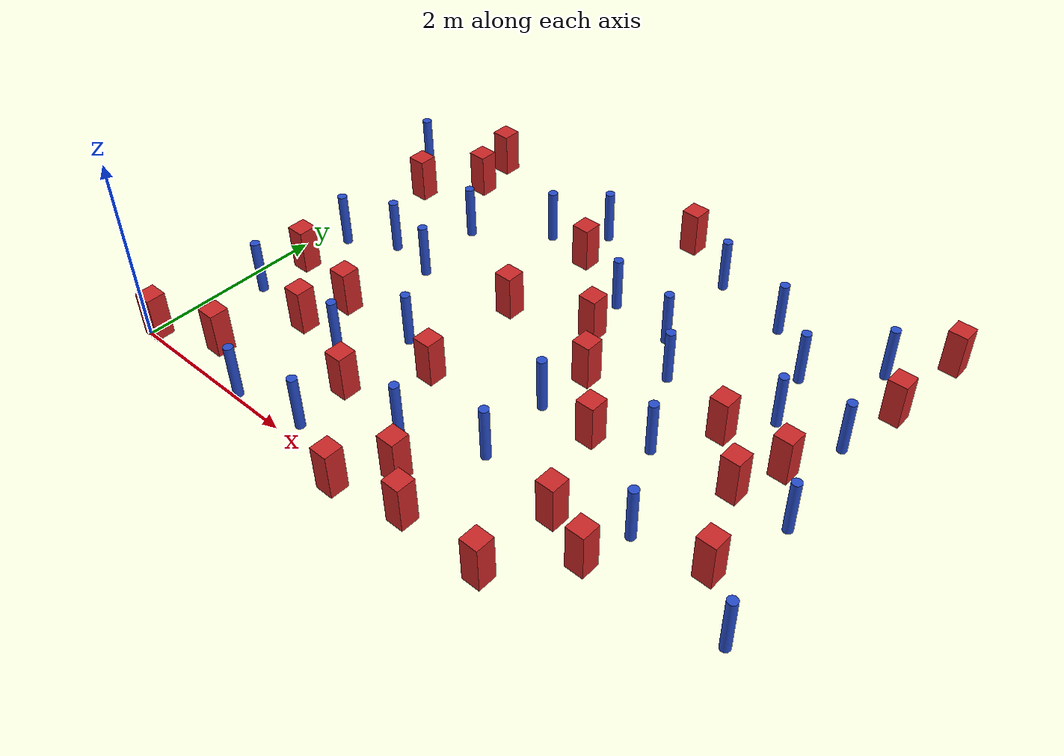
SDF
<sdf version="1.6">
 <model name="dense_6">
  <model name="pole_obstacle1">
   <static>true</static>
   <pose>3.22779918112 3.45898310527 7.38925637345e-09 -8.47170692798e-08 1.24976764939e-08 -1.74513093025e-07</pose>
   <link name="link">
    <pose>0 0 0.3 0 -0 0</pose>
    <inertial>
     <mass>1</mass>
     <inertia><ixx>0.145833</ixx><ixy>0</ixy><ixz>0</ixz><iyy>0.145833</iyy><iyz>0</iyz><izz>0.125</izz></inertia>
    </inertial>
    <collision name="collision">
     <geometry><cylinder><radius>0.05</radius><length>.6</length></cylinder></geometry>
    </collision>
    <visual name="visual">
     <geometry><cylinder><radius>0.05</radius><length>.6</length></cylinder></geometry>
     <material>
      <script><name>Gazebo/Blue</name><uri>file://media/materials/scripts/gazebo.material</uri></script>
     </material>
    </visual>
   </link>
  </model>
  <model name="pole_obstacle6">
   <static>true</static>
   <pose>5.24686441359 3.76029672284 7.38925637345e-09 -8.47170692798e-08 1.24976764937e-08 -1.74513093023e-07</pose>
   <link name="link">
    <pose>0 0 0.3 0 -0 0</pose>
    <inertial>
     <mass>1</mass>
     <inertia><ixx>0.145833</ixx><ixy>0</ixy><ixz>0</ixz><iyy>0.145833</iyy><iyz>0</iyz><izz>0.125</izz></inertia>
    </inertial>
    <collision name="collision">
     <geometry><cylinder><radius>0.05</radius><length>.6</length></cylinder></geometry>
    </collision>
    <visual name="visual">
     <geometry><cylinder><radius>0.05</radius><length>.6</length></cylinder></geometry>
     <material>
      <script><name>Gazebo/Blue</name><uri>file://media/materials/scripts/gazebo.material</uri></script>
     </material>
    </visual>
   </link>
  </model>
  <model name="pole_obstacle14">
   <static>true</static>
   <pose>1.94766628035 3.90778660255 7.38925637345e-09 -8.47170692799e-08 1.24976765053e-08 -1.74513093017e-07</pose>
   <link name="link">
    <pose>0 0 0.3 0 -0 0</pose>
    <inertial>
     <mass>1</mass>
     <inertia><ixx>0.145833</ixx><ixy>0</ixy><ixz>0</ixz><iyy>0.145833</iyy><iyz>0</iyz><izz>0.125</izz></inertia>
    </inertial>
    <collision name="collision">
     <geometry><cylinder><radius>0.05</radius><length>.6</length></cylinder></geometry>
    </collision>
    <visual name="visual">
     <geometry><cylinder><radius>0.05</radius><length>.6</length></cylinder></geometry>
     <material>
      <script><name>Gazebo/Blue</name><uri>file://media/materials/scripts/gazebo.material</uri></script>
     </material>
    </visual>
   </link>
  </model>
  <model name="square_post_obstacle30">
   <static>true</static>
   <pose>5.13288017218 0.674521279068 1.91545236811e-07 -7.35059704564e-06 1.12565212e-07 2.39332434364e-05</pose>
   <link name="link">
    <pose>0 0 0.25 0 -0 0</pose>
    <inertial>
     <mass>100</mass>
     <inertia>
      <ixx>0.166667</ixx>
      <ixy>0</ixy>
      <ixz>0</ixz>
      <iyy>0.166667</iyy>
      <iyz>0</iyz>
      <izz>0.166667</izz>
     </inertia>
    </inertial>
    <collision name="collision"><geometry><box><size>.2 .2 .5</size></box></geometry></collision>
    <visual name="visual">
     <geometry><box><size>.2 .2 .5</size></box></geometry>
     <material>
      <script><name>Gazebo/Red</name><uri>file://media/materials/scripts/gazebo.material</uri></script>
     </material>
    </visual>
   </link>
  </model>
  <model name="pole_obstacle37">
   <static>true</static>
   <pose>5.84280054387 4.3593617072 7.38925637345e-09 -8.47170692796e-08 1.24976764786e-08 -1.74513093032e-07</pose>
   <link name="link">
    <pose>0 0 0.3 0 -0 0</pose>
    <inertial>
     <mass>1</mass>
     <inertia><ixx>0.145833</ixx><ixy>0</ixy><ixz>0</ixz><iyy>0.145833</iyy><iyz>0</iyz><izz>0.125</izz></inertia>
    </inertial>
    <collision name="collision">
     <geometry><cylinder><radius>0.05</radius><length>.6</length></cylinder></geometry>
    </collision>
    <visual name="visual">
     <geometry><cylinder><radius>0.05</radius><length>.6</length></cylinder></geometry>
     <material>
      <script><name>Gazebo/Blue</name><uri>file://media/materials/scripts/gazebo.material</uri></script>
     </material>
    </visual>
   </link>
  </model>
  <model name="square_post_obstacle41">
   <static>true</static>
   <pose>0.294179833933 1.78256472612 1.91545236811e-07 -7.35059704564e-06 1.12565212e-07 2.39332434364e-05</pose>
   <link name="link">
    <pose>0 0 0.25 0 -0 0</pose>
    <inertial>
     <mass>100</mass>
     <inertia>
      <ixx>0.166667</ixx>
      <ixy>0</ixy>
      <ixz>0</ixz>
      <iyy>0.166667</iyy>
      <iyz>0</iyz>
      <izz>0.166667</izz>
     </inertia>
    </inertial>
    <collision name="collision"><geometry><box><size>.2 .2 .5</size></box></geometry></collision>
    <visual name="visual">
     <geometry><box><size>.2 .2 .5</size></box></geometry>
     <material>
      <script><name>Gazebo/Red</name><uri>file://media/materials/scripts/gazebo.material</uri></script>
     </material>
    </visual>
   </link>
  </model>
  <model name="square_post_obstacle42">
   <static>true</static>
   <pose>3.70733429573 2.41052173213 1.91545236811e-07 -7.35059704564e-06 1.12565212e-07 2.39332434364e-05</pose>
   <link name="link">
    <pose>0 0 0.25 0 -0 0</pose>
    <inertial>
     <mass>100</mass>
     <inertia>
      <ixx>0.166667</ixx>
      <ixy>0</ixy>
      <ixz>0</ixz>
      <iyy>0.166667</iyy>
      <iyz>0</iyz>
      <izz>0.166667</izz>
     </inertia>
    </inertial>
    <collision name="collision"><geometry><box><size>.2 .2 .5</size></box></geometry></collision>
    <visual name="visual">
     <geometry><box><size>.2 .2 .5</size></box></geometry>
     <material>
      <script><name>Gazebo/Red</name><uri>file://media/materials/scripts/gazebo.material</uri></script>
     </material>
    </visual>
   </link>
  </model>
  <model name="pole_obstacle52">
   <static>true</static>
   <pose>3.86616990221 4.44570101452 7.38925637345e-09 -8.47170692798e-08 1.24976765033e-08 -1.74513093019e-07</pose>
   <link name="link">
    <pose>0 0 0.3 0 -0 0</pose>
    <inertial>
     <mass>1</mass>
     <inertia><ixx>0.145833</ixx><ixy>0</ixy><ixz>0</ixz><iyy>0.145833</iyy><iyz>0</iyz><izz>0.125</izz></inertia>
    </inertial>
    <collision name="collision">
     <geometry><cylinder><radius>0.05</radius><length>.6</length></cylinder></geometry>
    </collision>
    <visual name="visual">
     <geometry><cylinder><radius>0.05</radius><length>.6</length></cylinder></geometry>
     <material>
      <script><name>Gazebo/Blue</name><uri>file://media/materials/scripts/gazebo.material</uri></script>
     </material>
    </visual>
   </link>
  </model>
  <model name="pole_obstacle55">
   <static>true</static>
   <pose>0.297352679253 2.3528883768 7.38925637345e-09 -8.471706928e-08 1.24976765078e-08 -1.74513093017e-07</pose>
   <link name="link">
    <pose>0 0 0.3 0 -0 0</pose>
    <inertial>
     <mass>1</mass>
     <inertia><ixx>0.145833</ixx><ixy>0</ixy><ixz>0</ixz><iyy>0.145833</iyy><iyz>0</iyz><izz>0.125</izz></inertia>
    </inertial>
    <collision name="collision">
     <geometry><cylinder><radius>0.05</radius><length>.6</length></cylinder></geometry>
    </collision>
    <visual name="visual">
     <geometry><cylinder><radius>0.05</radius><length>.6</length></cylinder></geometry>
     <material>
      <script><name>Gazebo/Blue</name><uri>file://media/materials/scripts/gazebo.material</uri></script>
     </material>
    </visual>
   </link>
  </model>
  <model name="pole_obstacle63">
   <static>true</static>
   <pose>4.76035839436 2.07022243836 7.38925637345e-09 -8.47170692798e-08 1.24976764937e-08 -1.74513093023e-07</pose>
   <link name="link">
    <pose>0 0 0.3 0 -0 0</pose>
    <inertial>
     <mass>1</mass>
     <inertia><ixx>0.145833</ixx><ixy>0</ixy><ixz>0</ixz><iyy>0.145833</iyy><iyz>0</iyz><izz>0.125</izz></inertia>
    </inertial>
    <collision name="collision">
     <geometry><cylinder><radius>0.05</radius><length>.6</length></cylinder></geometry>
    </collision>
    <visual name="visual">
     <geometry><cylinder><radius>0.05</radius><length>.6</length></cylinder></geometry>
     <material>
      <script><name>Gazebo/Blue</name><uri>file://media/materials/scripts/gazebo.material</uri></script>
     </material>
    </visual>
   </link>
  </model>
  <model name="square_post_obstacle66">
   <static>true</static>
   <pose>1.16872407727 1.60637170319 1.91545236811e-07 -7.35059704564e-06 1.12565212e-07 2.39332434364e-05</pose>
   <link name="link">
    <pose>0 0 0.25 0 -0 0</pose>
    <inertial>
     <mass>100</mass>
     <inertia>
      <ixx>0.166667</ixx>
      <ixy>0</ixy>
      <ixz>0</ixz>
      <iyy>0.166667</iyy>
      <iyz>0</iyz>
      <izz>0.166667</izz>
     </inertia>
    </inertial>
    <collision name="collision"><geometry><box><size>.2 .2 .5</size></box></geometry></collision>
    <visual name="visual">
     <geometry><box><size>.2 .2 .5</size></box></geometry>
     <material>
      <script><name>Gazebo/Red</name><uri>file://media/materials/scripts/gazebo.material</uri></script>
     </material>
    </visual>
   </link>
  </model>
  <model name="pole_obstacle68">
   <static>true</static>
   <pose>2.41578329187 4.30963766332 7.38925637345e-09 -8.47170692798e-08 1.24976765033e-08 -1.74513093019e-07</pose>
   <link name="link">
    <pose>0 0 0.3 0 -0 0</pose>
    <inertial>
     <mass>1</mass>
     <inertia><ixx>0.145833</ixx><ixy>0</ixy><ixz>0</ixz><iyy>0.145833</iyy><iyz>0</iyz><izz>0.125</izz></inertia>
    </inertial>
    <collision name="collision">
     <geometry><cylinder><radius>0.05</radius><length>.6</length></cylinder></geometry>
    </collision>
    <visual name="visual">
     <geometry><cylinder><radius>0.05</radius><length>.6</length></cylinder></geometry>
     <material>
      <script><name>Gazebo/Blue</name><uri>file://media/materials/scripts/gazebo.material</uri></script>
     </material>
    </visual>
   </link>
  </model>
  <model name="square_post_obstacle75">
   <static>true</static>
   <pose>4.25424207896 1.82605460015 1.91545236811e-07 -7.35059704564e-06 1.12565212e-07 2.39332434364e-05</pose>
   <link name="link">
    <pose>0 0 0.25 0 -0 0</pose>
    <inertial>
     <mass>100</mass>
     <inertia>
      <ixx>0.166667</ixx>
      <ixy>0</ixy>
      <ixz>0</ixz>
      <iyy>0.166667</iyy>
      <iyz>0</iyz>
      <izz>0.166667</izz>
     </inertia>
    </inertial>
    <collision name="collision"><geometry><box><size>.2 .2 .5</size></box></geometry></collision>
    <visual name="visual">
     <geometry><box><size>.2 .2 .5</size></box></geometry>
     <material>
      <script><name>Gazebo/Red</name><uri>file://media/materials/scripts/gazebo.material</uri></script>
     </material>
    </visual>
   </link>
  </model>
  <model name="pole_obstacle73">
   <static>true</static>
   <pose>6.19446029751 2.12766933946 7.38925637345e-09 -8.47170692798e-08 1.24976764937e-08 -1.74513093023e-07</pose>
   <link name="link">
    <pose>0 0 0.3 0 -0 0</pose>
    <inertial>
     <mass>1</mass>
     <inertia><ixx>0.145833</ixx><ixy>0</ixy><ixz>0</ixz><iyy>0.145833</iyy><iyz>0</iyz><izz>0.125</izz></inertia>
    </inertial>
    <collision name="collision">
     <geometry><cylinder><radius>0.05</radius><length>.6</length></cylinder></geometry>
    </collision>
    <visual name="visual">
     <geometry><cylinder><radius>0.05</radius><length>.6</length></cylinder></geometry>
     <material>
      <script><name>Gazebo/Blue</name><uri>file://media/materials/scripts/gazebo.material</uri></script>
     </material>
    </visual>
   </link>
  </model>
  <model name="pole_obstacle77">
   <static>true</static>
   <pose>-0.147935530165 4.04131726886 7.38925637345e-09 -8.47170692798e-08 1.24976764967e-08 -1.74513093023e-07</pose>
   <link name="link">
    <pose>0 0 0.3 0 -0 0</pose>
    <inertial>
     <mass>1</mass>
     <inertia><ixx>0.145833</ixx><ixy>0</ixy><ixz>0</ixz><iyy>0.145833</iyy><iyz>0</iyz><izz>0.125</izz></inertia>
    </inertial>
    <collision name="collision">
     <geometry><cylinder><radius>0.05</radius><length>.6</length></cylinder></geometry>
    </collision>
    <visual name="visual">
     <geometry><cylinder><radius>0.05</radius><length>.6</length></cylinder></geometry>
     <material>
      <script><name>Gazebo/Blue</name><uri>file://media/materials/scripts/gazebo.material</uri></script>
     </material>
    </visual>
   </link>
  </model>
  <model name="square_post_obstacle77">
   <static>true</static>
   <pose>5.11859508152 2.65492560635 1.91545236811e-07 -7.35059704564e-06 1.12565212e-07 2.39332434364e-05</pose>
   <link name="link">
    <pose>0 0 0.25 0 -0 0</pose>
    <inertial>
     <mass>100</mass>
     <inertia>
      <ixx>0.166667</ixx>
      <ixy>0</ixy>
      <ixz>0</ixz>
      <iyy>0.166667</iyy>
      <iyz>0</iyz>
      <izz>0.166667</izz>
     </inertia>
    </inertial>
    <collision name="collision"><geometry><box><size>.2 .2 .5</size></box></geometry></collision>
    <visual name="visual">
     <geometry><box><size>.2 .2 .5</size></box></geometry>
     <material>
      <script><name>Gazebo/Red</name><uri>file://media/materials/scripts/gazebo.material</uri></script>
     </material>
    </visual>
   </link>
  </model>
  <model name="pole_obstacle80">
   <static>true</static>
   <pose>3.93960398755 3.36603298096 7.38925637345e-09 -8.47170692798e-08 1.24976764939e-08 -1.74513093025e-07</pose>
   <link name="link">
    <pose>0 0 0.3 0 -0 0</pose>
    <inertial>
     <mass>1</mass>
     <inertia><ixx>0.145833</ixx><ixy>0</ixy><ixz>0</ixz><iyy>0.145833</iyy><iyz>0</iyz><izz>0.125</izz></inertia>
    </inertial>
    <collision name="collision">
     <geometry><cylinder><radius>0.05</radius><length>.6</length></cylinder></geometry>
    </collision>
    <visual name="visual">
     <geometry><cylinder><radius>0.05</radius><length>.6</length></cylinder></geometry>
     <material>
      <script><name>Gazebo/Blue</name><uri>file://media/materials/scripts/gazebo.material</uri></script>
     </material>
    </visual>
   </link>
  </model>
  <model name="pole_obstacle84">
   <static>true</static>
   <pose>5.24751490533 1.17985394361 7.38925637345e-09 -8.471706928e-08 1.24976765134e-08 -1.74513093015e-07</pose>
   <link name="link">
    <pose>0 0 0.3 0 -0 0</pose>
    <inertial>
     <mass>1</mass>
     <inertia><ixx>0.145833</ixx><ixy>0</ixy><ixz>0</ixz><iyy>0.145833</iyy><iyz>0</iyz><izz>0.125</izz></inertia>
    </inertial>
    <collision name="collision">
     <geometry><cylinder><radius>0.05</radius><length>.6</length></cylinder></geometry>
    </collision>
    <visual name="visual">
     <geometry><cylinder><radius>0.05</radius><length>.6</length></cylinder></geometry>
     <material>
      <script><name>Gazebo/Blue</name><uri>file://media/materials/scripts/gazebo.material</uri></script>
     </material>
    </visual>
   </link>
  </model>
  <model name="square_post_obstacle82">
   <static>true</static>
   <pose>3.66900997854 0.0325757577106 1.91545236811e-07 -7.35059704564e-06 1.12565212e-07 2.39332434364e-05</pose>
   <link name="link">
    <pose>0 0 0.25 0 -0 0</pose>
    <inertial>
     <mass>100</mass>
     <inertia>
      <ixx>0.166667</ixx>
      <ixy>0</ixy>
      <ixz>0</ixz>
      <iyy>0.166667</iyy>
      <iyz>0</iyz>
      <izz>0.166667</izz>
     </inertia>
    </inertial>
    <collision name="collision"><geometry><box><size>.2 .2 .5</size></box></geometry></collision>
    <visual name="visual">
     <geometry><box><size>.2 .2 .5</size></box></geometry>
     <material>
      <script><name>Gazebo/Red</name><uri>file://media/materials/scripts/gazebo.material</uri></script>
     </material>
    </visual>
   </link>
  </model>
  <model name="pole_obstacle90">
   <static>true</static>
   <pose>4.29182752671 2.92887068589 7.38925637345e-09 -8.47170692798e-08 1.24976764937e-08 -1.74513093023e-07</pose>
   <link name="link">
    <pose>0 0 0.3 0 -0 0</pose>
    <inertial>
     <mass>1</mass>
     <inertia><ixx>0.145833</ixx><ixy>0</ixy><ixz>0</ixz><iyy>0.145833</iyy><iyz>0</iyz><izz>0.125</izz></inertia>
    </inertial>
    <collision name="collision">
     <geometry><cylinder><radius>0.05</radius><length>.6</length></cylinder></geometry>
    </collision>
    <visual name="visual">
     <geometry><cylinder><radius>0.05</radius><length>.6</length></cylinder></geometry>
     <material>
      <script><name>Gazebo/Blue</name><uri>file://media/materials/scripts/gazebo.material</uri></script>
     </material>
    </visual>
   </link>
  </model>
  <model name="pole_obstacle96">
   <static>true</static>
   <pose>0.270935388706 1.20584516179 7.38925637345e-09 -8.47170692799e-08 1.24976765073e-08 -1.74513093015e-07</pose>
   <link name="link">
    <pose>0 0 0.3 0 -0 0</pose>
    <inertial>
     <mass>1</mass>
     <inertia><ixx>0.145833</ixx><ixy>0</ixy><ixz>0</ixz><iyy>0.145833</iyy><iyz>0</iyz><izz>0.125</izz></inertia>
    </inertial>
    <collision name="collision">
     <geometry><cylinder><radius>0.05</radius><length>.6</length></cylinder></geometry>
    </collision>
    <visual name="visual">
     <geometry><cylinder><radius>0.05</radius><length>.6</length></cylinder></geometry>
     <material>
      <script><name>Gazebo/Blue</name><uri>file://media/materials/scripts/gazebo.material</uri></script>
     </material>
    </visual>
   </link>
  </model>
  <model name="square_post_obstacle84">
   <static>true</static>
   <pose>5.80404412261 2.63800593922 1.91545236811e-07 -7.35059704564e-06 1.12565212e-07 2.39332434364e-05</pose>
   <link name="link">
    <pose>0 0 0.25 0 -0 0</pose>
    <inertial>
     <mass>100</mass>
     <inertia>
      <ixx>0.166667</ixx>
      <ixy>0</ixy>
      <ixz>0</ixz>
      <iyy>0.166667</iyy>
      <iyz>0</iyz>
      <izz>0.166667</izz>
     </inertia>
    </inertial>
    <collision name="collision"><geometry><box><size>.2 .2 .5</size></box></geometry></collision>
    <visual name="visual">
     <geometry><box><size>.2 .2 .5</size></box></geometry>
     <material>
      <script><name>Gazebo/Red</name><uri>file://media/materials/scripts/gazebo.material</uri></script>
     </material>
    </visual>
   </link>
  </model>
  <model name="pole_obstacle100">
   <static>true</static>
   <pose>3.6477077047 1.84033119703 7.38925637345e-09 -8.471706928e-08 1.24976765152e-08 -1.74513093012e-07</pose>
   <link name="link">
    <pose>0 0 0.3 0 -0 0</pose>
    <inertial>
     <mass>1</mass>
     <inertia><ixx>0.145833</ixx><ixy>0</ixy><ixz>0</ixz><iyy>0.145833</iyy><iyz>0</iyz><izz>0.125</izz></inertia>
    </inertial>
    <collision name="collision">
     <geometry><cylinder><radius>0.05</radius><length>.6</length></cylinder></geometry>
    </collision>
    <visual name="visual">
     <geometry><cylinder><radius>0.05</radius><length>.6</length></cylinder></geometry>
     <material>
      <script><name>Gazebo/Blue</name><uri>file://media/materials/scripts/gazebo.material</uri></script>
     </material>
    </visual>
   </link>
  </model>
  <model name="square_post_obstacle90">
   <static>true</static>
   <pose>4.58704493301 0.0254031396948 1.91545236811e-07 -7.35059704564e-06 1.12565212e-07 2.39332434364e-05</pose>
   <link name="link">
    <pose>0 0 0.25 0 -0 0</pose>
    <inertial>
     <mass>100</mass>
     <inertia>
      <ixx>0.166667</ixx>
      <ixy>0</ixy>
      <ixz>0</ixz>
      <iyy>0.166667</iyy>
      <iyz>0</iyz>
      <izz>0.166667</izz>
     </inertia>
    </inertial>
    <collision name="collision"><geometry><box><size>.2 .2 .5</size></box></geometry></collision>
    <visual name="visual">
     <geometry><box><size>.2 .2 .5</size></box></geometry>
     <material>
      <script><name>Gazebo/Red</name><uri>file://media/materials/scripts/gazebo.material</uri></script>
     </material>
    </visual>
   </link>
  </model>
  <model name="square_post_obstacle94">
   <static>true</static>
   <pose>0.703124214271 0.343905633906 1.91545236811e-07 -7.35059704564e-06 1.12565212e-07 2.39332434364e-05</pose>
   <link name="link">
    <pose>0 0 0.25 0 -0 0</pose>
    <inertial>
     <mass>100</mass>
     <inertia>
      <ixx>0.166667</ixx>
      <ixy>0</ixy>
      <ixz>0</ixz>
      <iyy>0.166667</iyy>
      <iyz>0</iyz>
      <izz>0.166667</izz>
     </inertia>
    </inertial>
    <collision name="collision"><geometry><box><size>.2 .2 .5</size></box></geometry></collision>
    <visual name="visual">
     <geometry><box><size>.2 .2 .5</size></box></geometry>
     <material>
      <script><name>Gazebo/Red</name><uri>file://media/materials/scripts/gazebo.material</uri></script>
     </material>
    </visual>
   </link>
  </model>
  <model name="square_post_obstacle98">
   <static>true</static>
   <pose>6.18719778903 3.91540696605 1.91545236811e-07 -7.35059704564e-06 1.12565212e-07 2.39332434364e-05</pose>
   <link name="link">
    <pose>0 0 0.25 0 -0 0</pose>
    <inertial>
     <mass>100</mass>
     <inertia>
      <ixx>0.166667</ixx>
      <ixy>0</ixy>
      <ixz>0</ixz>
      <iyy>0.166667</iyy>
      <iyz>0</iyz>
      <izz>0.166667</izz>
     </inertia>
    </inertial>
    <collision name="collision"><geometry><box><size>.2 .2 .5</size></box></geometry></collision>
    <visual name="visual">
     <geometry><box><size>.2 .2 .5</size></box></geometry>
     <material>
      <script><name>Gazebo/Red</name><uri>file://media/materials/scripts/gazebo.material</uri></script>
     </material>
    </visual>
   </link>
  </model>
  <model name="pole_obstacle111">
   <static>true</static>
   <pose>2.88608512881 0.717811487844 7.38925637345e-09 -8.471706928e-08 1.24976765177e-08 -1.74513093012e-07</pose>
   <link name="link">
    <pose>0 0 0.3 0 -0 0</pose>
    <inertial>
     <mass>1</mass>
     <inertia><ixx>0.145833</ixx><ixy>0</ixy><ixz>0</ixz><iyy>0.145833</iyy><iyz>0</iyz><izz>0.125</izz></inertia>
    </inertial>
    <collision name="collision">
     <geometry><cylinder><radius>0.05</radius><length>.6</length></cylinder></geometry>
    </collision>
    <visual name="visual">
     <geometry><cylinder><radius>0.05</radius><length>.6</length></cylinder></geometry>
     <material>
      <script><name>Gazebo/Blue</name><uri>file://media/materials/scripts/gazebo.material</uri></script>
     </material>
    </visual>
   </link>
  </model>
  <model name="square_post_obstacle100">
   <static>true</static>
   <pose>0.603002228556 4.59201754902 1.91545236811e-07 -7.35059704564e-06 1.12565212e-07 2.39332434364e-05</pose>
   <link name="link">
    <pose>0 0 0.25 0 -0 0</pose>
    <inertial>
     <mass>100</mass>
     <inertia>
      <ixx>0.166667</ixx>
      <ixy>0</ixy>
      <ixz>0</ixz>
      <iyy>0.166667</iyy>
      <iyz>0</iyz>
      <izz>0.166667</izz>
     </inertia>
    </inertial>
    <collision name="collision"><geometry><box><size>.2 .2 .5</size></box></geometry></collision>
    <visual name="visual">
     <geometry><box><size>.2 .2 .5</size></box></geometry>
     <material>
      <script><name>Gazebo/Red</name><uri>file://media/materials/scripts/gazebo.material</uri></script>
     </material>
    </visual>
   </link>
  </model>
  <model name="pole_obstacle119">
   <static>true</static>
   <pose>1.5794283373 1.10435585413 7.38925637345e-09 -8.471706928e-08 1.24976765079e-08 -1.74513093017e-07</pose>
   <link name="link">
    <pose>0 0 0.3 0 -0 0</pose>
    <inertial>
     <mass>1</mass>
     <inertia><ixx>0.145833</ixx><ixy>0</ixy><ixz>0</ixz><iyy>0.145833</iyy><iyz>0</iyz><izz>0.125</izz></inertia>
    </inertial>
    <collision name="collision">
     <geometry><cylinder><radius>0.05</radius><length>.6</length></cylinder></geometry>
    </collision>
    <visual name="visual">
     <geometry><cylinder><radius>0.05</radius><length>.6</length></cylinder></geometry>
     <material>
      <script><name>Gazebo/Blue</name><uri>file://media/materials/scripts/gazebo.material</uri></script>
     </material>
    </visual>
   </link>
  </model>
  <model name="square_post_obstacle111">
   <static>true</static>
   <pose>2.93944634478 -0.124234732507 1.91545236811e-07 -7.35059704564e-06 1.12565212e-07 2.39332434364e-05</pose>
   <link name="link">
    <pose>0 0 0.25 0 -0 0</pose>
    <inertial>
     <mass>100</mass>
     <inertia>
      <ixx>0.166667</ixx>
      <ixy>0</ixy>
      <ixz>0</ixz>
      <iyy>0.166667</iyy>
      <iyz>0</iyz>
      <izz>0.166667</izz>
     </inertia>
    </inertial>
    <collision name="collision"><geometry><box><size>.2 .2 .5</size></box></geometry></collision>
    <visual name="visual">
     <geometry><box><size>.2 .2 .5</size></box></geometry>
     <material>
      <script><name>Gazebo/Red</name><uri>file://media/materials/scripts/gazebo.material</uri></script>
     </material>
    </visual>
   </link>
  </model>
  <model name="pole_obstacle120">
   <static>true</static>
   <pose>1.2178212107 3.3676272738 7.38925637345e-09 -8.47170692799e-08 1.24976765053e-08 -1.74513093017e-07</pose>
   <link name="link">
    <pose>0 0 0.3 0 -0 0</pose>
    <inertial>
     <mass>1</mass>
     <inertia><ixx>0.145833</ixx><ixy>0</ixy><ixz>0</ixz><iyy>0.145833</iyy><iyz>0</iyz><izz>0.125</izz></inertia>
    </inertial>
    <collision name="collision">
     <geometry><cylinder><radius>0.05</radius><length>.6</length></cylinder></geometry>
    </collision>
    <visual name="visual">
     <geometry><cylinder><radius>0.05</radius><length>.6</length></cylinder></geometry>
     <material>
      <script><name>Gazebo/Blue</name><uri>file://media/materials/scripts/gazebo.material</uri></script>
     </material>
    </visual>
   </link>
  </model>
  <model name="pole_obstacle124">
   <static>true</static>
   <pose>6.0472711642 3.23607107506 7.38925637345e-09 -8.47170692798e-08 1.24976764937e-08 -1.74513093023e-07</pose>
   <link name="link">
    <pose>0 0 0.3 0 -0 0</pose>
    <inertial>
     <mass>1</mass>
     <inertia><ixx>0.145833</ixx><ixy>0</ixy><ixz>0</ixz><iyy>0.145833</iyy><iyz>0</iyz><izz>0.125</izz></inertia>
    </inertial>
    <collision name="collision">
     <geometry><cylinder><radius>0.05</radius><length>.6</length></cylinder></geometry>
    </collision>
    <visual name="visual">
     <geometry><cylinder><radius>0.05</radius><length>.6</length></cylinder></geometry>
     <material>
      <script><name>Gazebo/Blue</name><uri>file://media/materials/scripts/gazebo.material</uri></script>
     </material>
    </visual>
   </link>
  </model>
  <model name="pole_obstacle126">
   <static>true</static>
   <pose>3.69420544465 1.0326985294 7.38925637345e-09 -8.47170692793e-08 1.2497676438e-08 -1.74513093043e-07</pose>
   <link name="link">
    <pose>0 0 0.3 0 -0 0</pose>
    <inertial>
     <mass>1</mass>
     <inertia><ixx>0.145833</ixx><ixy>0</ixy><ixz>0</ixz><iyy>0.145833</iyy><iyz>0</iyz><izz>0.125</izz></inertia>
    </inertial>
    <collision name="collision">
     <geometry><cylinder><radius>0.05</radius><length>.6</length></cylinder></geometry>
    </collision>
    <visual name="visual">
     <geometry><cylinder><radius>0.05</radius><length>.6</length></cylinder></geometry>
     <material>
      <script><name>Gazebo/Blue</name><uri>file://media/materials/scripts/gazebo.material</uri></script>
     </material>
    </visual>
   </link>
  </model>
  <model name="square_post_obstacle114">
   <static>true</static>
   <pose>5.60409998075 2.13952415268 1.91545236811e-07 -7.35059704564e-06 1.12565212e-07 2.39332434364e-05</pose>
   <link name="link">
    <pose>0 0 0.25 0 -0 0</pose>
    <inertial>
     <mass>100</mass>
     <inertia>
      <ixx>0.166667</ixx>
      <ixy>0</ixy>
      <ixz>0</ixz>
      <iyy>0.166667</iyy>
      <iyz>0</iyz>
      <izz>0.166667</izz>
     </inertia>
    </inertial>
    <collision name="collision"><geometry><box><size>.2 .2 .5</size></box></geometry></collision>
    <visual name="visual">
     <geometry><box><size>.2 .2 .5</size></box></geometry>
     <material>
      <script><name>Gazebo/Red</name><uri>file://media/materials/scripts/gazebo.material</uri></script>
     </material>
    </visual>
   </link>
  </model>
  <model name="pole_obstacle132">
   <static>true</static>
   <pose>5.4146138125 3.12393097636 7.38925637345e-09 -8.47170692798e-08 1.24976764937e-08 -1.74513093023e-07</pose>
   <link name="link">
    <pose>0 0 0.3 0 -0 0</pose>
    <inertial>
     <mass>1</mass>
     <inertia><ixx>0.145833</ixx><ixy>0</ixy><ixz>0</ixz><iyy>0.145833</iyy><iyz>0</iyz><izz>0.125</izz></inertia>
    </inertial>
    <collision name="collision">
     <geometry><cylinder><radius>0.05</radius><length>.6</length></cylinder></geometry>
    </collision>
    <visual name="visual">
     <geometry><cylinder><radius>0.05</radius><length>.6</length></cylinder></geometry>
     <material>
      <script><name>Gazebo/Blue</name><uri>file://media/materials/scripts/gazebo.material</uri></script>
     </material>
    </visual>
   </link>
  </model>
  <model name="square_post_obstacle116">
   <static>true</static>
   <pose>3.31624651936 2.96142785672 1.91545236811e-07 -7.35059704564e-06 1.12565212e-07 2.39332434364e-05</pose>
   <link name="link">
    <pose>0 0 0.25 0 -0 0</pose>
    <inertial>
     <mass>100</mass>
     <inertia>
      <ixx>0.166667</ixx>
      <ixy>0</ixy>
      <ixz>0</ixz>
      <iyy>0.166667</iyy>
      <iyz>0</iyz>
      <izz>0.166667</izz>
     </inertia>
    </inertial>
    <collision name="collision"><geometry><box><size>.2 .2 .5</size></box></geometry></collision>
    <visual name="visual">
     <geometry><box><size>.2 .2 .5</size></box></geometry>
     <material>
      <script><name>Gazebo/Red</name><uri>file://media/materials/scripts/gazebo.material</uri></script>
     </material>
    </visual>
   </link>
  </model>
  <model name="square_post_obstacle117">
   <static>true</static>
   <pose>2.45211920488 2.67253201076 1.91545236811e-07 -7.35059704564e-06 1.12565212e-07 2.39332434364e-05</pose>
   <link name="link">
    <pose>0 0 0.25 0 -0 0</pose>
    <inertial>
     <mass>100</mass>
     <inertia>
      <ixx>0.166667</ixx>
      <ixy>0</ixy>
      <ixz>0</ixz>
      <iyy>0.166667</iyy>
      <iyz>0</iyz>
      <izz>0.166667</izz>
     </inertia>
    </inertial>
    <collision name="collision"><geometry><box><size>.2 .2 .5</size></box></geometry></collision>
    <visual name="visual">
     <geometry><box><size>.2 .2 .5</size></box></geometry>
     <material>
      <script><name>Gazebo/Red</name><uri>file://media/materials/scripts/gazebo.material</uri></script>
     </material>
    </visual>
   </link>
  </model>
  <model name="square_post_obstacle122">
   <static>true</static>
   <pose>3.21371380845 4.79155478431 1.91545236811e-07 -7.35059704564e-06 1.12565212e-07 2.39332434364e-05</pose>
   <link name="link">
    <pose>0 0 0.25 0 -0 0</pose>
    <inertial>
     <mass>100</mass>
     <inertia>
      <ixx>0.166667</ixx>
      <ixy>0</ixy>
      <ixz>0</ixz>
      <iyy>0.166667</iyy>
      <iyz>0</iyz>
      <izz>0.166667</izz>
     </inertia>
    </inertial>
    <collision name="collision"><geometry><box><size>.2 .2 .5</size></box></geometry></collision>
    <visual name="visual">
     <geometry><box><size>.2 .2 .5</size></box></geometry>
     <material>
      <script><name>Gazebo/Red</name><uri>file://media/materials/scripts/gazebo.material</uri></script>
     </material>
    </visual>
   </link>
  </model>
  <model name="pole_obstacle148">
   <static>true</static>
   <pose>0.797809882655 2.63392756254 7.38925637345e-09 -8.47170692799e-08 1.2497676509e-08 -1.74513093016e-07</pose>
   <link name="link">
    <pose>0 0 0.3 0 -0 0</pose>
    <inertial>
     <mass>1</mass>
     <inertia><ixx>0.145833</ixx><ixy>0</ixy><ixz>0</ixz><iyy>0.145833</iyy><iyz>0</iyz><izz>0.125</izz></inertia>
    </inertial>
    <collision name="collision">
     <geometry><cylinder><radius>0.05</radius><length>.6</length></cylinder></geometry>
    </collision>
    <visual name="visual">
     <geometry><cylinder><radius>0.05</radius><length>.6</length></cylinder></geometry>
     <material>
      <script><name>Gazebo/Blue</name><uri>file://media/materials/scripts/gazebo.material</uri></script>
     </material>
    </visual>
   </link>
  </model>
  <model name="square_post_obstacle146">
   <static>true</static>
   <pose>6.27519345454 4.89837691135 1.91545236811e-07 -7.35059704564e-06 1.12565212e-07 2.39332434364e-05</pose>
   <link name="link">
    <pose>0 0 0.25 0 -0 0</pose>
    <inertial>
     <mass>100</mass>
     <inertia>
      <ixx>0.166667</ixx>
      <ixy>0</ixy>
      <ixz>0</ixz>
      <iyy>0.166667</iyy>
      <iyz>0</iyz>
      <izz>0.166667</izz>
     </inertia>
    </inertial>
    <collision name="collision"><geometry><box><size>.2 .2 .5</size></box></geometry></collision>
    <visual name="visual">
     <geometry><box><size>.2 .2 .5</size></box></geometry>
     <material>
      <script><name>Gazebo/Red</name><uri>file://media/materials/scripts/gazebo.material</uri></script>
     </material>
    </visual>
   </link>
  </model>
  <model name="square_post_obstacle156">
   <static>true</static>
   <pose>0.04848842098 0.0736525338243 1.91545236811e-07 -7.35059704564e-06 1.12565212e-07 2.39332434364e-05</pose>
   <link name="link">
    <pose>0 0 0.25 0 -0 0</pose>
    <inertial>
     <mass>100</mass>
     <inertia>
      <ixx>0.166667</ixx>
      <ixy>0</ixy>
      <ixz>0</ixz>
      <iyy>0.166667</iyy>
      <iyz>0</iyz>
      <izz>0.166667</izz>
     </inertia>
    </inertial>
    <collision name="collision"><geometry><box><size>.2 .2 .5</size></box></geometry></collision>
    <visual name="visual">
     <geometry><box><size>.2 .2 .5</size></box></geometry>
     <material>
      <script><name>Gazebo/Red</name><uri>file://media/materials/scripts/gazebo.material</uri></script>
     </material>
    </visual>
   </link>
  </model>
  <model name="pole_obstacle171">
   <static>true</static>
   <pose>1.36975782374 0.0469841432358 7.38925637345e-09 -8.47170692799e-08 1.24976765035e-08 -1.7451309302e-07</pose>
   <link name="link">
    <pose>0 0 0.3 0 -0 0</pose>
    <inertial>
     <mass>1</mass>
     <inertia><ixx>0.145833</ixx><ixy>0</ixy><ixz>0</ixz><iyy>0.145833</iyy><iyz>0</iyz><izz>0.125</izz></inertia>
    </inertial>
    <collision name="collision">
     <geometry><cylinder><radius>0.05</radius><length>.6</length></cylinder></geometry>
    </collision>
    <visual name="visual">
     <geometry><cylinder><radius>0.05</radius><length>.6</length></cylinder></geometry>
     <material>
      <script><name>Gazebo/Blue</name><uri>file://media/materials/scripts/gazebo.material</uri></script>
     </material>
    </visual>
   </link>
  </model>
  <model name="pole_obstacle175">
   <static>true</static>
   <pose>6.47920280078 0.814747904 7.38925637345e-09 -8.47170692799e-08 1.24976765038e-08 -1.74513093018e-07</pose>
   <link name="link">
    <pose>0 0 0.3 0 -0 0</pose>
    <inertial>
     <mass>1</mass>
     <inertia><ixx>0.145833</ixx><ixy>0</ixy><ixz>0</ixz><iyy>0.145833</iyy><iyz>0</iyz><izz>0.125</izz></inertia>
    </inertial>
    <collision name="collision">
     <geometry><cylinder><radius>0.05</radius><length>.6</length></cylinder></geometry>
    </collision>
    <visual name="visual">
     <geometry><cylinder><radius>0.05</radius><length>.6</length></cylinder></geometry>
     <material>
      <script><name>Gazebo/Blue</name><uri>file://media/materials/scripts/gazebo.material</uri></script>
     </material>
    </visual>
   </link>
  </model>
  <model name="square_post_obstacle166">
   <static>true</static>
   <pose>1.05758008968 1.11767447746 1.91545236811e-07 -7.35059704564e-06 1.12565212e-07 2.39332434364e-05</pose>
   <link name="link">
    <pose>0 0 0.25 0 -0 0</pose>
    <inertial>
     <mass>100</mass>
     <inertia>
      <ixx>0.166667</ixx>
      <ixy>0</ixy>
      <ixz>0</ixz>
      <iyy>0.166667</iyy>
      <iyz>0</iyz>
      <izz>0.166667</izz>
     </inertia>
    </inertial>
    <collision name="collision"><geometry><box><size>.2 .2 .5</size></box></geometry></collision>
    <visual name="visual">
     <geometry><box><size>.2 .2 .5</size></box></geometry>
     <material>
      <script><name>Gazebo/Red</name><uri>file://media/materials/scripts/gazebo.material</uri></script>
     </material>
    </visual>
   </link>
  </model>
  <model name="square_post_obstacle169">
   <static>true</static>
   <pose>0.706510010046 4.08889011199 1.91545236811e-07 -7.35059704564e-06 1.12565212e-07 2.39332434364e-05</pose>
   <link name="link">
    <pose>0 0 0.25 0 -0 0</pose>
    <inertial>
     <mass>100</mass>
     <inertia>
      <ixx>0.166667</ixx>
      <ixy>0</ixy>
      <ixz>0</ixz>
      <iyy>0.166667</iyy>
      <iyz>0</iyz>
      <izz>0.166667</izz>
     </inertia>
    </inertial>
    <collision name="collision"><geometry><box><size>.2 .2 .5</size></box></geometry></collision>
    <visual name="visual">
     <geometry><box><size>.2 .2 .5</size></box></geometry>
     <material>
      <script><name>Gazebo/Red</name><uri>file://media/materials/scripts/gazebo.material</uri></script>
     </material>
    </visual>
   </link>
  </model>
  <model name="square_post_obstacle172">
   <static>true</static>
   <pose>3.25594022626 0.350049426285 1.91545236811e-07 -7.35059704564e-06 1.12565212e-07 2.39332434364e-05</pose>
   <link name="link">
    <pose>0 0 0.25 0 -0 0</pose>
    <inertial>
     <mass>100</mass>
     <inertia>
      <ixx>0.166667</ixx>
      <ixy>0</ixy>
      <ixz>0</ixz>
      <iyy>0.166667</iyy>
      <iyz>0</iyz>
      <izz>0.166667</izz>
     </inertia>
    </inertial>
    <collision name="collision"><geometry><box><size>.2 .2 .5</size></box></geometry></collision>
    <visual name="visual">
     <geometry><box><size>.2 .2 .5</size></box></geometry>
     <material>
      <script><name>Gazebo/Red</name><uri>file://media/materials/scripts/gazebo.material</uri></script>
     </material>
    </visual>
   </link>
  </model>
  <model name="pole_obstacle188">
   <static>true</static>
   <pose>1.35197945201 2.5338834313 7.38925637345e-09 -8.47170692799e-08 1.24976765053e-08 -1.74513093017e-07</pose>
   <link name="link">
    <pose>0 0 0.3 0 -0 0</pose>
    <inertial>
     <mass>1</mass>
     <inertia><ixx>0.145833</ixx><ixy>0</ixy><ixz>0</ixz><iyy>0.145833</iyy><iyz>0</iyz><izz>0.125</izz></inertia>
    </inertial>
    <collision name="collision">
     <geometry><cylinder><radius>0.05</radius><length>.6</length></cylinder></geometry>
    </collision>
    <visual name="visual">
     <geometry><cylinder><radius>0.05</radius><length>.6</length></cylinder></geometry>
     <material>
      <script><name>Gazebo/Blue</name><uri>file://media/materials/scripts/gazebo.material</uri></script>
     </material>
    </visual>
   </link>
  </model>
  <model name="square_post_obstacle181">
   <static>true</static>
   <pose>2.56380817241 1.44251558556 1.91545236811e-07 -7.35059704564e-06 1.12565212e-07 2.39332434364e-05</pose>
   <link name="link">
    <pose>0 0 0.25 0 -0 0</pose>
    <inertial>
     <mass>100</mass>
     <inertia>
      <ixx>0.166667</ixx>
      <ixy>0</ixy>
      <ixz>0</ixz>
      <iyy>0.166667</iyy>
      <iyz>0</iyz>
      <izz>0.166667</izz>
     </inertia>
    </inertial>
    <collision name="collision"><geometry><box><size>.2 .2 .5</size></box></geometry></collision>
    <visual name="visual">
     <geometry><box><size>.2 .2 .5</size></box></geometry>
     <material>
      <script><name>Gazebo/Red</name><uri>file://media/materials/scripts/gazebo.material</uri></script>
     </material>
    </visual>
   </link>
  </model>
  <model name="pole_obstacle194">
   <static>true</static>
   <pose>4.69564321062 4.23524498851 7.38925637345e-09 -8.47170692796e-08 1.24976764786e-08 -1.74513093032e-07</pose>
   <link name="link">
    <pose>0 0 0.3 0 -0 0</pose>
    <inertial>
     <mass>1</mass>
     <inertia><ixx>0.145833</ixx><ixy>0</ixy><ixz>0</ixz><iyy>0.145833</iyy><iyz>0</iyz><izz>0.125</izz></inertia>
    </inertial>
    <collision name="collision">
     <geometry><cylinder><radius>0.05</radius><length>.6</length></cylinder></geometry>
    </collision>
    <visual name="visual">
     <geometry><cylinder><radius>0.05</radius><length>.6</length></cylinder></geometry>
     <material>
      <script><name>Gazebo/Blue</name><uri>file://media/materials/scripts/gazebo.material</uri></script>
     </material>
    </visual>
   </link>
  </model>
  <model name="square_post_obstacle195">
   <static>true</static>
   <pose>5.97178585754 1.29063541937 1.91545236811e-07 -7.35059704564e-06 1.12565212e-07 2.39332434364e-05</pose>
   <link name="link">
    <pose>0 0 0.25 0 -0 0</pose>
    <inertial>
     <mass>100</mass>
     <inertia>
      <ixx>0.166667</ixx>
      <ixy>0</ixy>
      <ixz>0</ixz>
      <iyy>0.166667</iyy>
      <iyz>0</iyz>
      <izz>0.166667</izz>
     </inertia>
    </inertial>
    <collision name="collision"><geometry><box><size>.2 .2 .5</size></box></geometry></collision>
    <visual name="visual">
     <geometry><box><size>.2 .2 .5</size></box></geometry>
     <material>
      <script><name>Gazebo/Red</name><uri>file://media/materials/scripts/gazebo.material</uri></script>
     </material>
    </visual>
   </link>
  </model>
  <model name="square_post_obstacle197">
   <static>true</static>
   <pose>0.258945892976 3.56522572074 1.91545236811e-07 -7.35059704564e-06 1.12565212e-07 2.39332434364e-05</pose>
   <link name="link">
    <pose>0 0 0.25 0 -0 0</pose>
    <inertial>
     <mass>100</mass>
     <inertia>
      <ixx>0.166667</ixx>
      <ixy>0</ixy>
      <ixz>0</ixz>
      <iyy>0.166667</iyy>
      <iyz>0</iyz>
      <izz>0.166667</izz>
     </inertia>
    </inertial>
    <collision name="collision"><geometry><box><size>.2 .2 .5</size></box></geometry></collision>
    <visual name="visual">
     <geometry><box><size>.2 .2 .5</size></box></geometry>
     <material>
      <script><name>Gazebo/Red</name><uri>file://media/materials/scripts/gazebo.material</uri></script>
     </material>
    </visual>
   </link>
  </model>
  <model name="square_post_obstacle198">
   <static>true</static>
   <pose>2.09262812035 0.759592621214 1.91545236811e-07 -7.35059704564e-06 1.12565212e-07 2.39332434364e-05</pose>
   <link name="link">
    <pose>0 0 0.25 0 -0 0</pose>
    <inertial>
     <mass>100</mass>
     <inertia>
      <ixx>0.166667</ixx>
      <ixy>0</ixy>
      <ixz>0</ixz>
      <iyy>0.166667</iyy>
      <iyz>0</iyz>
      <izz>0.166667</izz>
     </inertia>
    </inertial>
    <collision name="collision"><geometry><box><size>.2 .2 .5</size></box></geometry></collision>
    <visual name="visual">
     <geometry><box><size>.2 .2 .5</size></box></geometry>
     <material>
      <script><name>Gazebo/Red</name><uri>file://media/materials/scripts/gazebo.material</uri></script>
     </material>
    </visual>
   </link>
  </model>
  <model name="pole_obstacle219">
   <static>true</static>
   <pose>2.03022795542 1.6546452367 7.38925637345e-09 -8.471706928e-08 1.24976765091e-08 -1.74513093016e-07</pose>
   <link name="link">
    <pose>0 0 0.3 0 -0 0</pose>
    <inertial>
     <mass>1</mass>
     <inertia><ixx>0.145833</ixx><ixy>0</ixy><ixz>0</ixz><iyy>0.145833</iyy><iyz>0</iyz><izz>0.125</izz></inertia>
    </inertial>
    <collision name="collision">
     <geometry><cylinder><radius>0.05</radius><length>.6</length></cylinder></geometry>
    </collision>
    <visual name="visual">
     <geometry><cylinder><radius>0.05</radius><length>.6</length></cylinder></geometry>
     <material>
      <script><name>Gazebo/Blue</name><uri>file://media/materials/scripts/gazebo.material</uri></script>
     </material>
    </visual>
   </link>
  </model>
  <model name="pole_obstacle222">
   <static>true</static>
   <pose>2.14049712722 0.168383491581 7.38925637345e-09 -8.471706928e-08 1.2497676517e-08 -1.74513093012e-07</pose>
   <link name="link">
    <pose>0 0 0.3 0 -0 0</pose>
    <inertial>
     <mass>1</mass>
     <inertia><ixx>0.145833</ixx><ixy>0</ixy><ixz>0</ixz><iyy>0.145833</iyy><iyz>0</iyz><izz>0.125</izz></inertia>
    </inertial>
    <collision name="collision">
     <geometry><cylinder><radius>0.05</radius><length>.6</length></cylinder></geometry>
    </collision>
    <visual name="visual">
     <geometry><cylinder><radius>0.05</radius><length>.6</length></cylinder></geometry>
     <material>
      <script><name>Gazebo/Blue</name><uri>file://media/materials/scripts/gazebo.material</uri></script>
     </material>
    </visual>
   </link>
  </model>
  <model name="square_post_obstacle207">
   <static>true</static>
   <pose>4.62406586982 0.883056730544 1.91545236811e-07 -7.35059704564e-06 1.12565212e-07 2.39332434364e-05</pose>
   <link name="link">
    <pose>0 0 0.25 0 -0 0</pose>
    <inertial>
     <mass>100</mass>
     <inertia>
      <ixx>0.166667</ixx>
      <ixy>0</ixy>
      <ixz>0</ixz>
      <iyy>0.166667</iyy>
      <iyz>0</iyz>
      <izz>0.166667</izz>
     </inertia>
    </inertial>
    <collision name="collision"><geometry><box><size>.2 .2 .5</size></box></geometry></collision>
    <visual name="visual">
     <geometry><box><size>.2 .2 .5</size></box></geometry>
     <material>
      <script><name>Gazebo/Red</name><uri>file://media/materials/scripts/gazebo.material</uri></script>
     </material>
    </visual>
   </link>
  </model>
  <model name="square_post_obstacle214">
   <static>true</static>
   <pose>2.50578319723 3.80711182145 1.91545236811e-07 -7.35059704564e-06 1.12565212e-07 2.39332434364e-05</pose>
   <link name="link">
    <pose>0 0 0.25 0 -0 0</pose>
    <inertial>
     <mass>100</mass>
     <inertia>
      <ixx>0.166667</ixx>
      <ixy>0</ixy>
      <ixz>0</ixz>
      <iyy>0.166667</iyy>
      <iyz>0</iyz>
      <izz>0.166667</izz>
     </inertia>
    </inertial>
    <collision name="collision"><geometry><box><size>.2 .2 .5</size></box></geometry></collision>
    <visual name="visual">
     <geometry><box><size>.2 .2 .5</size></box></geometry>
     <material>
      <script><name>Gazebo/Red</name><uri>file://media/materials/scripts/gazebo.material</uri></script>
     </material>
    </visual>
   </link>
  </model>
 </model>
</sdf>
